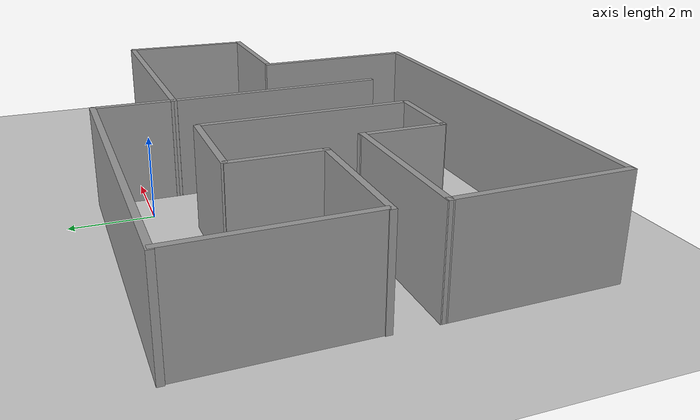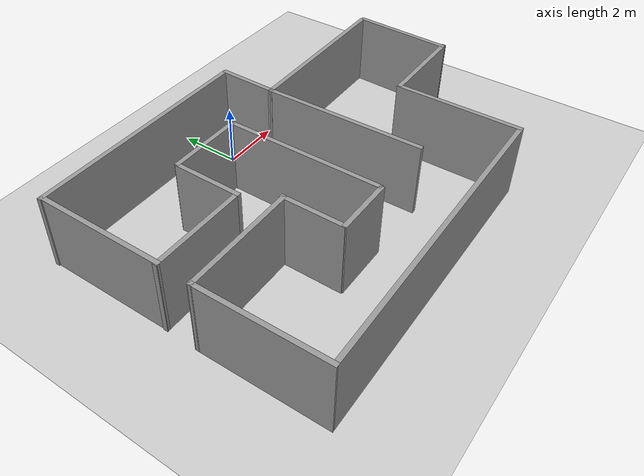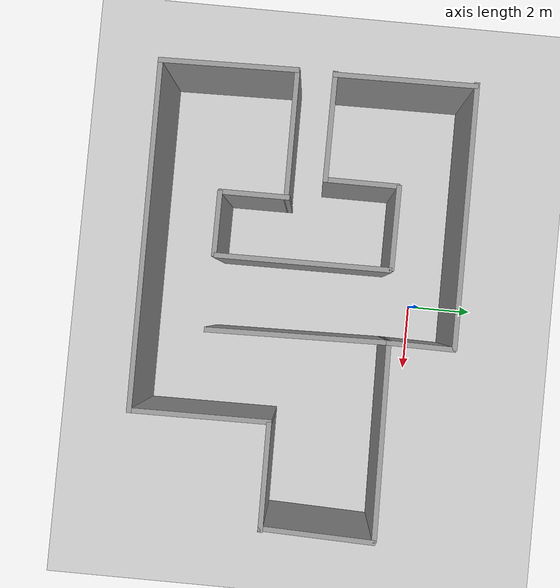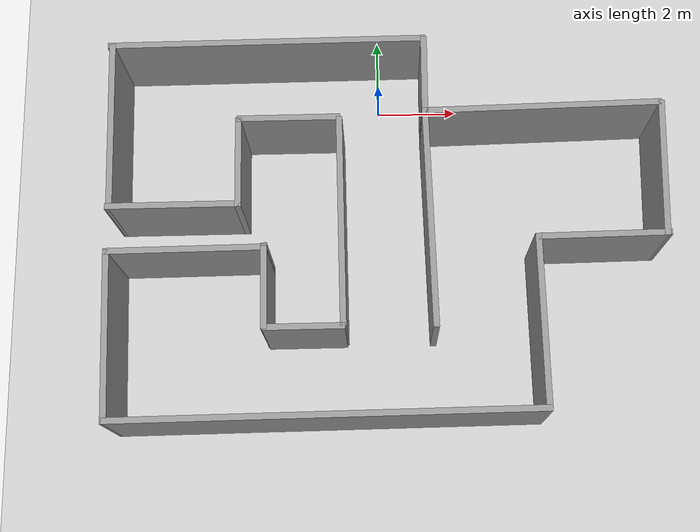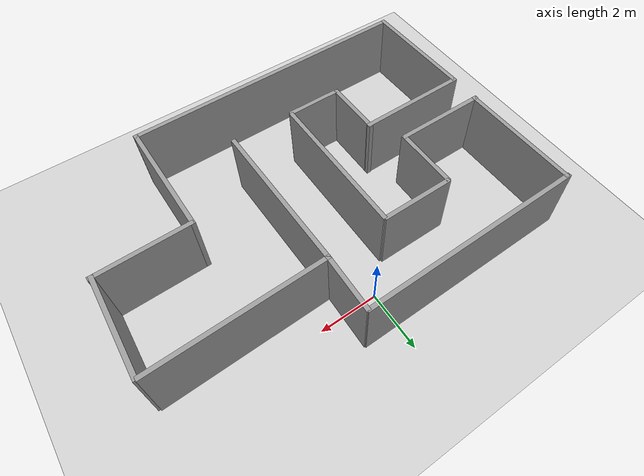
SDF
<?xml version="1.0" ?>
<sdf version="1.5">
  <world name="default">
    <!-- A global light source -->
    <light name='sun' type='directional'>
      <cast_shadows>1</cast_shadows>
      <pose frame=''>0 0 20 0 -0 0</pose>
      <diffuse>0.8 0.8 0.8 1</diffuse>
      <specular>0.1 0.1 0.1 1</specular>
      <attenuation>
        <range>1000</range>
        <constant>0.9</constant>
        <linear>0.01</linear>
        <quadratic>0.001</quadratic>
      </attenuation>
      <direction>-0.5 0.5 -1</direction>
    </light>
    <!-- A ground plane -->
    <include>
      <uri>model://ground_plane</uri>
    </include>

    <!-- Only one ROS interface plugin is required per world, as any other plugin can connect a Gazebo
         topic to a ROS topic (or vise versa). -->
    <plugin name="ros_interface_plugin" filename="librotors_gazebo_ros_interface_plugin.so"/>

    <physics name='default_physics' default='0' type='ode'>
      <gravity>0 0 -9.8066</gravity>
      <ode>
        <solver>
          <type>quick</type>
          <iters>10</iters>
          <sor>1.3</sor>
          <use_dynamic_moi_rescaling>0</use_dynamic_moi_rescaling>
        </solver>
        <constraints>
          <cfm>0</cfm>
          <erp>0.2</erp>
          <contact_max_correcting_vel>100</contact_max_correcting_vel>
          <contact_surface_layer>0.001</contact_surface_layer>
        </constraints>
      </ode>
      <max_step_size>0.002</max_step_size>
      <real_time_factor>1</real_time_factor>
      <real_time_update_rate>500</real_time_update_rate>
      <magnetic_field>6e-06 2.3e-05 -4.2e-05</magnetic_field>
    </physics>

<model name='small_factory'>
      <pose frame=''>0.167856 -3.55018 0 0 -0 0</pose>
      <link name='Wall_49'>
        <collision name='Wall_49_Collision'>
          <geometry>
            <box>
              <size>5.42677 0.15 2.5</size>
            </box>
          </geometry>
          <pose frame=''>0 0 1.25 0 -0 0</pose>
          <max_contacts>10</max_contacts>
          <surface>
            <contact>
              <ode/>
            </contact>
            <bounce/>
            <friction>
              <torsional>
                <ode/>
              </torsional>
              <ode/>
            </friction>
          </surface>
        </collision>
        <visual name='Wall_49_Visual'>
          <pose frame=''>0 0 1.25 0 -0 0</pose>
          <geometry>
            <box>
              <size>5.42677 0.15 2.5</size>
            </box>
          </geometry>
          <material>
            <script>
              <uri>file://media/materials/scripts/gazebo.material</uri>
              <name>Gazebo/Grey</name>
            </script>
            <ambient>1 1 1 1</ambient>
          </material>
          <meta>
            <layer>0</layer>
          </meta>
        </visual>
        <pose frame=''>1.01352 0.086125 0 0 -0 1.59164</pose>
        <self_collide>0</self_collide>
        <kinematic>0</kinematic>
      </link>
      <link name='Wall_50'>
        <collision name='Wall_50_Collision'>
          <geometry>
            <box>
              <size>2.026 0.15 2.5</size>
            </box>
          </geometry>
          <pose frame=''>0 0 1.25 0 -0 0</pose>
          <max_contacts>10</max_contacts>
          <surface>
            <contact>
              <ode/>
            </contact>
            <bounce/>
            <friction>
              <torsional>
                <ode/>
              </torsional>
              <ode/>
            </friction>
          </surface>
        </collision>
        <visual name='Wall_50_Visual'>
          <pose frame=''>0 0 1.25 0 -0 0</pose>
          <geometry>
            <box>
              <size>2.026 0.15 2.5</size>
            </box>
          </geometry>
          <material>
            <script>
              <uri>file://media/materials/scripts/gazebo.material</uri>
              <name>Gazebo/Grey</name>
            </script>
            <ambient>1 1 1 1</ambient>
          </material>
          <meta>
            <layer>0</layer>
          </meta>
        </visual>
        <pose frame=''>0.969367 3.66152 0 0 -0 1.55926</pose>
        <self_collide>0</self_collide>
        <kinematic>0</kinematic>
      </link>
      <link name='Wall_51'>
        <collision name='Wall_51_Collision'>
          <geometry>
            <box>
              <size>7.82404 0.15 2.5</size>
            </box>
          </geometry>
          <pose frame=''>0 0 1.25 0 -0 0</pose>
          <max_contacts>10</max_contacts>
          <surface>
            <contact>
              <ode/>
            </contact>
            <bounce/>
            <friction>
              <torsional>
                <ode/>
              </torsional>
              <ode/>
            </friction>
          </surface>
        </collision>
        <visual name='Wall_51_Visual'>
          <pose frame=''>0 0 1.25 0 -0 0</pose>
          <geometry>
            <box>
              <size>7.82404 0.15 2.5</size>
            </box>
          </geometry>
          <material>
            <script>
              <uri>file://media/materials/scripts/gazebo.material</uri>
              <name>Gazebo/Grey</name>
            </script>
            <ambient>1 1 1 1</ambient>
          </material>
          <meta>
            <layer>0</layer>
          </meta>
        </visual>
        <pose frame=''>-2.89195 4.61441 0 0 0 -3.13632</pose>
        <self_collide>0</self_collide>
        <kinematic>0</kinematic>
      </link>
      <link name='Wall_52'>
        <collision name='Wall_52_Collision'>
          <geometry>
            <box>
              <size>4.24698 0.15 2.5</size>
            </box>
          </geometry>
          <pose frame=''>0 0 1.25 0 -0 0</pose>
          <max_contacts>10</max_contacts>
          <surface>
            <contact>
              <ode/>
            </contact>
            <bounce/>
            <friction>
              <torsional>
                <ode/>
              </torsional>
              <ode/>
            </friction>
          </surface>
        </collision>
        <visual name='Wall_52_Visual'>
          <pose frame=''>0 0 1.25 0 -0 0</pose>
          <geometry>
            <box>
              <size>4.24698 0.15 2.5</size>
            </box>
          </geometry>
          <material>
            <script>
              <uri>file://media/materials/scripts/gazebo.material</uri>
              <name>Gazebo/Grey</name>
            </script>
            <ambient>1 1 1 1</ambient>
          </material>
          <meta>
            <layer>0</layer>
          </meta>
        </visual>
        <pose frame=''>-6.67186 2.51063 0 0 0 -1.56012</pose>
        <self_collide>0</self_collide>
        <kinematic>0</kinematic>
      </link>
      <link name='Wall_53'>
        <collision name='Wall_53_Collision'>
          <geometry>
            <box>
              <size>3.25 0.15 2.5</size>
            </box>
          </geometry>
          <pose frame=''>0 0 1.25 0 -0 0</pose>
          <max_contacts>10</max_contacts>
          <surface>
            <contact>
              <ode/>
            </contact>
            <bounce/>
            <friction>
              <torsional>
                <ode/>
              </torsional>
              <ode/>
            </friction>
          </surface>
        </collision>
        <visual name='Wall_53_Visual'>
          <pose frame=''>0 0 1.25 0 -0 0</pose>
          <geometry>
            <box>
              <size>3.25 0.15 2.5</size>
            </box>
          </geometry>
          <material>
            <script>
              <uri>file://media/materials/scripts/gazebo.material</uri>
              <name>Gazebo/Grey</name>
            </script>
            <ambient>1 1 1 1</ambient>
          </material>
          <meta>
            <layer>0</layer>
          </meta>
        </visual>
        <pose frame=''>-5.12658 0.462254 0 0 -0 0</pose>
        <self_collide>0</self_collide>
        <kinematic>0</kinematic>
      </link>
      <link name='Wall_56'>
        <collision name='Wall_56_Collision'>
          <geometry>
            <box>
              <size>2.5 0.15 2.5</size>
            </box>
          </geometry>
          <pose frame=''>0 0 1.25 0 -0 0</pose>
          <max_contacts>10</max_contacts>
          <surface>
            <contact>
              <ode/>
            </contact>
            <bounce/>
            <friction>
              <torsional>
                <ode/>
              </torsional>
              <ode/>
            </friction>
          </surface>
        </collision>
        <visual name='Wall_56_Visual'>
          <pose frame=''>0 0 1.25 0 -0 0</pose>
          <geometry>
            <box>
              <size>2.5 0.15 2.5</size>
            </box>
          </geometry>
          <material>
            <script>
              <uri>file://media/materials/scripts/gazebo.material</uri>
              <name>Gazebo/Grey</name>
            </script>
            <ambient>1 1 1 1</ambient>
          </material>
          <meta>
            <layer>0</layer>
          </meta>
        </visual>
        <pose frame=''>-2.36417 2.61026 0 0 -0 0</pose>
        <self_collide>0</self_collide>
        <kinematic>0</kinematic>
      </link>
      <link name='Wall_59'>
        <collision name='Wall_59_Collision'>
          <geometry>
            <box>
              <size>2.07117 0.15 2.5</size>
            </box>
          </geometry>
          <pose frame=''>0 0 1.25 0 -0 0</pose>
          <max_contacts>10</max_contacts>
          <surface>
            <contact>
              <ode/>
            </contact>
            <bounce/>
            <friction>
              <torsional>
                <ode/>
              </torsional>
              <ode/>
            </friction>
          </surface>
        </collision>
        <visual name='Wall_59_Visual'>
          <pose frame=''>0 0 1.25 0 -0 0</pose>
          <geometry>
            <box>
              <size>2.07117 0.15 2.5</size>
            </box>
          </geometry>
          <material>
            <script>
              <uri>file://media/materials/scripts/gazebo.material</uri>
              <name>Gazebo/Grey</name>
            </script>
            <ambient>1 1 1 1</ambient>
          </material>
          <meta>
            <layer>0</layer>
          </meta>
        </visual>
        <pose frame=''>-2.95419 -1.5526 0 0 -0 1.57526</pose>
        <self_collide>0</self_collide>
        <kinematic>0</kinematic>
      </link>
      <link name='Wall_60'>
        <collision name='Wall_60_Collision'>
          <geometry>
            <box>
              <size>3.8725 0.15 2.5</size>
            </box>
          </geometry>
          <pose frame=''>0 0 1.25 0 -0 0</pose>
          <max_contacts>10</max_contacts>
          <surface>
            <contact>
              <ode/>
            </contact>
            <bounce/>
            <friction>
              <torsional>
                <ode/>
              </torsional>
              <ode/>
            </friction>
          </surface>
        </collision>
        <visual name='Wall_60_Visual'>
          <pose frame=''>0 0 1.25 0 -0 0</pose>
          <geometry>
            <box>
              <size>3.8725 0.15 2.5</size>
            </box>
          </geometry>
          <material>
            <script>
              <uri>file://media/materials/scripts/gazebo.material</uri>
              <name>Gazebo/Grey</name>
            </script>
            <ambient>1 1 1 1</ambient>
          </material>
          <meta>
            <layer>0</layer>
          </meta>
        </visual>
        <pose frame=''>-4.81968 -0.63193 0 0 0 -3.13445</pose>
        <self_collide>0</self_collide>
        <kinematic>0</kinematic>
      </link>
      <link name='Wall_61'>
        <collision name='Wall_61_Collision'>
          <geometry>
            <box>
              <size>4.11251 0.15 2.5</size>
            </box>
          </geometry>
          <pose frame=''>0 0 1.25 0 -0 0</pose>
          <max_contacts>10</max_contacts>
          <surface>
            <contact>
              <ode/>
            </contact>
            <bounce/>
            <friction>
              <torsional>
                <ode/>
              </torsional>
              <ode/>
            </friction>
          </surface>
        </collision>
        <visual name='Wall_61_Visual'>
          <pose frame=''>0 0 1.25 0 -0 0</pose>
          <geometry>
            <box>
              <size>4.11251 0.15 2.5</size>
            </box>
          </geometry>
          <material>
            <script>
              <uri>file://media/materials/scripts/gazebo.material</uri>
              <name>Gazebo/Grey</name>
            </script>
            <ambient>1 1 1 1</ambient>
          </material>
          <meta>
            <layer>0</layer>
          </meta>
        </visual>
        <pose frame=''>-6.64358 -2.65273 0 0 0 -1.55197</pose>
        <self_collide>0</self_collide>
        <kinematic>0</kinematic>
      </link>
      <link name='Wall_62'>
        <collision name='Wall_62_Collision'>
          <geometry>
            <box>
              <size>10.322 0.15 2.5</size>
            </box>
          </geometry>
          <pose frame=''>0 0 1.25 0 -0 0</pose>
          <max_contacts>10</max_contacts>
          <surface>
            <contact>
              <ode/>
            </contact>
            <bounce/>
            <friction>
              <torsional>
                <ode/>
              </torsional>
              <ode/>
            </friction>
          </surface>
        </collision>
        <visual name='Wall_62_Visual'>
          <pose frame=''>0 0 1.25 0 -0 0</pose>
          <geometry>
            <box>
              <size>10.322 0.15 2.5</size>
            </box>
          </geometry>
          <material>
            <script>
              <uri>file://media/materials/scripts/gazebo.material</uri>
              <name>Gazebo/Grey</name>
            </script>
            <ambient>1 1 1 1</ambient>
          </material>
          <meta>
            <layer>0</layer>
          </meta>
        </visual>
        <pose frame=''>-1.49396 -4.59846 0 0 -0 0.006917</pose>
        <self_collide>0</self_collide>
        <kinematic>0</kinematic>
      </link>
      <link name='Wall_63'>
        <collision name='Wall_63_Collision'>
          <geometry>
            <box>
              <size>4.17596 0.15 2.5</size>
            </box>
          </geometry>
          <pose frame=''>0 0 1.25 0 -0 0</pose>
          <max_contacts>10</max_contacts>
          <surface>
            <contact>
              <ode/>
            </contact>
            <bounce/>
            <friction>
              <torsional>
                <ode/>
              </torsional>
              <ode/>
            </friction>
          </surface>
        </collision>
        <visual name='Wall_63_Visual'>
          <pose frame=''>0 0 1.25 0 -0 0</pose>
          <geometry>
            <box>
              <size>4.17596 0.15 2.5</size>
            </box>
          </geometry>
          <material>
            <script>
              <uri>file://media/materials/scripts/gazebo.material</uri>
              <name>Gazebo/Grey</name>
            </script>
            <ambient>1 1 1 1</ambient>
          </material>
          <meta>
            <layer>0</layer>
          </meta>
        </visual>
        <pose frame=''>3.57417 -2.51512 0 0 -0 1.57953</pose>
        <self_collide>0</self_collide>
        <kinematic>0</kinematic>
      </link>
      <link name='Wall_64'>
        <collision name='Wall_64_Collision'>
          <geometry>
            <box>
              <size>3.21502 0.15 2.5</size>
            </box>
          </geometry>
          <pose frame=''>0 0 1.25 0 -0 0</pose>
          <max_contacts>10</max_contacts>
          <surface>
            <contact>
              <ode/>
            </contact>
            <bounce/>
            <friction>
              <torsional>
                <ode/>
              </torsional>
              <ode/>
            </friction>
          </surface>
        </collision>
        <visual name='Wall_64_Visual'>
          <pose frame=''>0 0 1.25 0 -0 0</pose>
          <geometry>
            <box>
              <size>3.21502 0.15 2.5</size>
            </box>
          </geometry>
          <material>
            <script>
              <uri>file://media/materials/scripts/gazebo.material</uri>
              <name>Gazebo/Grey</name>
            </script>
            <ambient>1 1 1 1</ambient>
          </material>
          <meta>
            <layer>0</layer>
          </meta>
        </visual>
        <pose frame=''>5.12417 -0.484549 0 0 -0 0.011478</pose>
        <self_collide>0</self_collide>
        <kinematic>0</kinematic>
      </link>
      <link name='Wall_65'>
        <collision name='Wall_65_Collision'>
          <geometry>
            <box>
              <size>3.41166 0.15 2.5</size>
            </box>
          </geometry>
          <pose frame=''>0 0 1.25 0 -0 0</pose>
          <max_contacts>10</max_contacts>
          <surface>
            <contact>
              <ode/>
            </contact>
            <bounce/>
            <friction>
              <torsional>
                <ode/>
              </torsional>
              <ode/>
            </friction>
          </surface>
        </collision>
        <visual name='Wall_65_Visual'>
          <pose frame=''>0 0 1.25 0 -0 0</pose>
          <geometry>
            <box>
              <size>3.41166 0.15 2.5</size>
            </box>
          </geometry>
          <material>
            <script>
              <uri>file://media/materials/scripts/gazebo.material</uri>
              <name>Gazebo/Grey</name>
            </script>
            <ambient>1 1 1 1</ambient>
          </material>
          <meta>
            <layer>0</layer>
          </meta>
        </visual>
        <pose frame=''>6.67417 1.16349 0 0 -0 1.53844</pose>
        <self_collide>0</self_collide>
        <kinematic>0</kinematic>
      </link>
      <link name='Wall_66'>
        <collision name='Wall_66_Collision'>
          <geometry>
            <box>
              <size>5.84902 0.15 2.5</size>
            </box>
          </geometry>
          <pose frame=''>0 0 1.25 0 -0 0</pose>
          <max_contacts>10</max_contacts>
          <surface>
            <contact>
              <ode/>
            </contact>
            <bounce/>
            <friction>
              <torsional>
                <ode/>
              </torsional>
              <ode/>
            </friction>
          </surface>
        </collision>
        <visual name='Wall_66_Visual'>
          <pose frame=''>0 0 1.25 0 -0 0</pose>
          <geometry>
            <box>
              <size>5.84902 0.15 2.5</size>
            </box>
          </geometry>
          <material>
            <script>
              <uri>file://media/materials/scripts/gazebo.material</uri>
              <name>Gazebo/Grey</name>
            </script>
            <ambient>1 1 1 1</ambient>
          </material>
          <meta>
            <layer>0</layer>
          </meta>
        </visual>
        <pose frame=''>3.80756 2.77635 0 0 0 -3.12307</pose>
        <self_collide>0</self_collide>
        <kinematic>0</kinematic>
      </link>
      <link name='Wall_68'>
        <collision name='Wall_68_Collision'>
          <geometry>
            <box>
              <size>1.92964 0.15 2.5</size>
            </box>
          </geometry>
          <pose frame=''>0 0 1.25 0 -0 0</pose>
          <max_contacts>10</max_contacts>
          <surface>
            <contact>
              <ode/>
            </contact>
            <bounce/>
            <friction>
              <torsional>
                <ode/>
              </torsional>
              <ode/>
            </friction>
          </surface>
        </collision>
        <visual name='Wall_68_Visual'>
          <pose frame=''>0 0 1.25 0 -0 0</pose>
          <geometry>
            <box>
              <size>1.92964 0.15 2.5</size>
            </box>
          </geometry>
          <material>
            <script>
              <uri>file://media/materials/scripts/gazebo.material</uri>
              <name>Gazebo/Grey</name>
            </script>
            <ambient>1 1 1 1</ambient>
          </material>
          <meta>
            <layer>0</layer>
          </meta>
        </visual>
        <pose frame=''>-2.0249 -2.54836 0 0 -0 0</pose>
        <self_collide>0</self_collide>
        <kinematic>0</kinematic>
      </link>
      <link name='Wall_69'>
        <collision name='Wall_69_Collision'>
          <geometry>
            <box>
              <size>5.17227 0.15 2.5</size>
            </box>
          </geometry>
          <pose frame=''>0 0 1.25 0 -0 0</pose>
          <max_contacts>10</max_contacts>
          <surface>
            <contact>
              <ode/>
            </contact>
            <bounce/>
            <friction>
              <torsional>
                <ode/>
              </torsional>
              <ode/>
            </friction>
          </surface>
        </collision>
        <visual name='Wall_69_Visual'>
          <pose frame=''>0 0 1.25 0 -0 0</pose>
          <geometry>
            <box>
              <size>5.17227 0.15 2.5</size>
            </box>
          </geometry>
          <material>
            <script>
              <uri>file://media/materials/scripts/gazebo.material</uri>
              <name>Gazebo/Grey</name>
            </script>
            <ambient>1 1 1 1</ambient>
          </material>
          <meta>
            <layer>0</layer>
          </meta>
        </visual>
        <pose frame=''>-1.11749 0.033073 0 0 -0 1.5778</pose>
        <self_collide>0</self_collide>
        <kinematic>0</kinematic>
      </link>
      <link name='Wall_71'>
        <collision name='Wall_71_Collision'>
          <geometry>
            <box>
              <size>2.25 0.15 2.5</size>
            </box>
          </geometry>
          <pose frame=''>0 0 1.25 0 -0 0</pose>
          <max_contacts>10</max_contacts>
          <surface>
            <contact>
              <ode/>
            </contact>
            <bounce/>
            <friction>
              <torsional>
                <ode/>
              </torsional>
              <ode/>
            </friction>
          </surface>
        </collision>
        <visual name='Wall_71_Visual'>
          <pose frame=''>0 0 1.25 0 -0 0</pose>
          <geometry>
            <box>
              <size>2.25 0.15 2.5</size>
            </box>
          </geometry>
          <material>
            <script>
              <uri>file://media/materials/scripts/gazebo.material</uri>
              <name>Gazebo/Grey</name>
            </script>
            <ambient>1 1 1 1</ambient>
          </material>
          <meta>
            <layer>0</layer>
          </meta>
        </visual>
        <pose frame=''>-3.57658 1.51225 0 0 -0 1.5708</pose>
        <self_collide>0</self_collide>
        <kinematic>0</kinematic>
      </link>
      <static>1</static>
    </model>

  </world>
</sdf>
